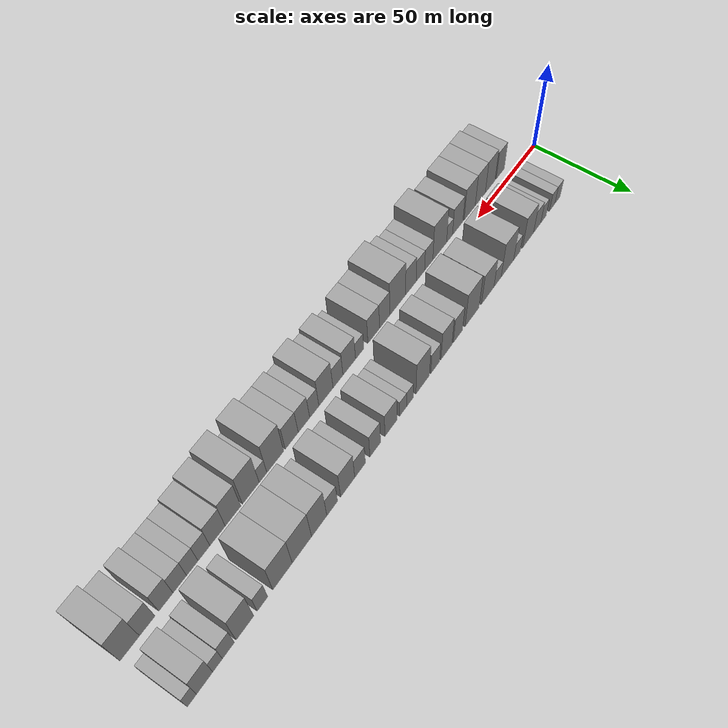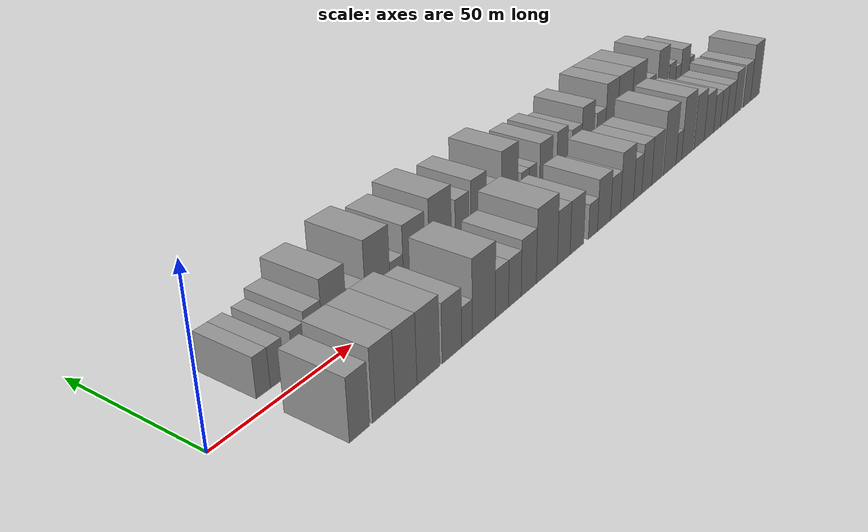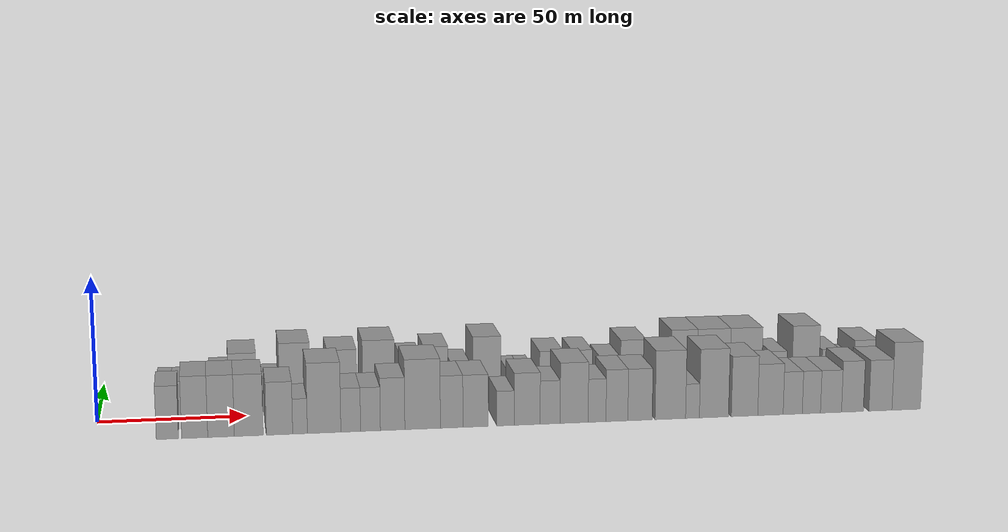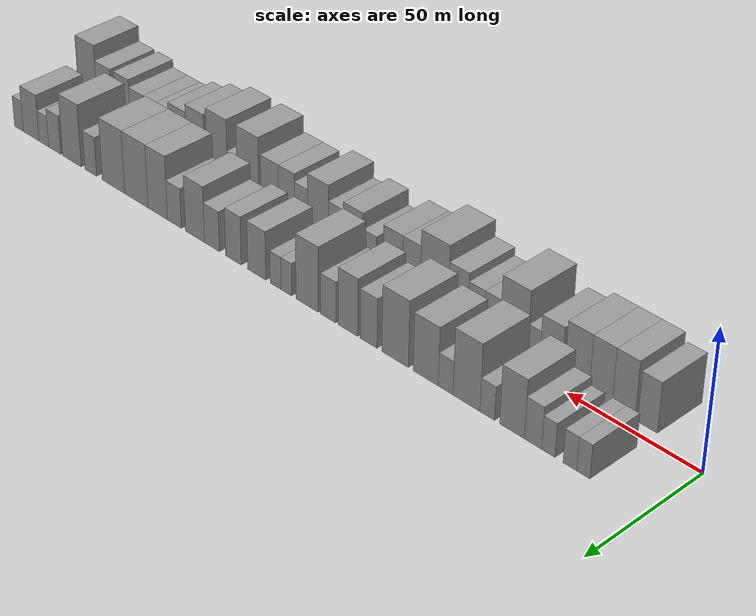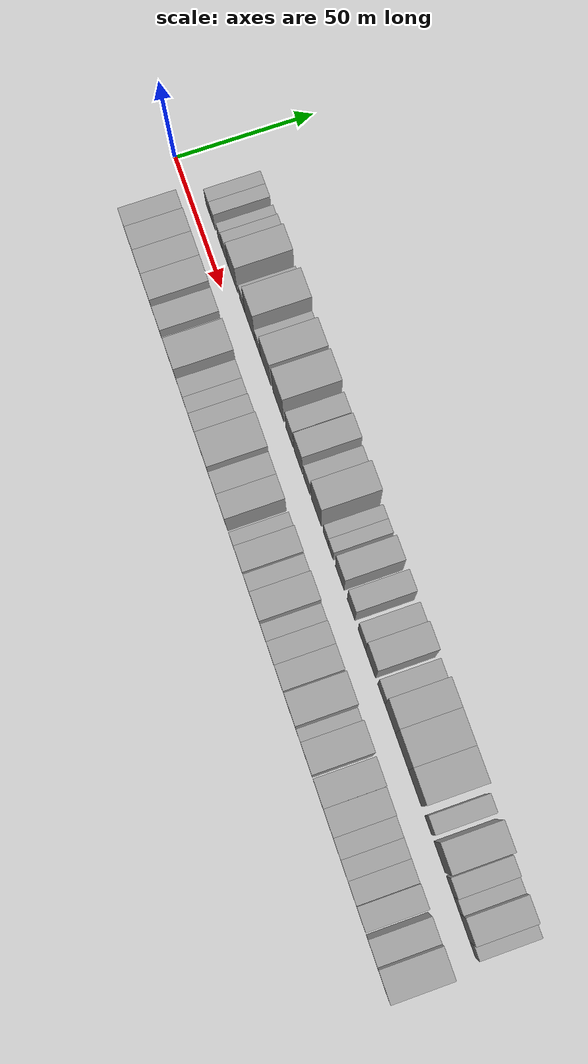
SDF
<sdf version="1.6">
 <world name="default">
  <scene>
   <sky><clouds><speed>12</speed></clouds></sky>
   <ambient>0.4 0.4 0.4 1</ambient>
   <background>0.7 0.7 0.7 1</background>
   <shadows>1</shadows>
  </scene>
  <gravity>0 0 -9.8066</gravity>
  <magnetic_field>6e-06 2.3e-05 -4.2e-05</magnetic_field>
  <physics default="0" name="default_physics" type="ode">
   <ode>
    <solver>
     <type>quick</type>
     <iters>10</iters>
     <sor>1.0</sor>
     <use_dynamic_moi_rescaling>0</use_dynamic_moi_rescaling>
    </solver>
    <constraints>
     <cfm>0</cfm>
     <erp>0.2</erp>
     <contact_max_correcting_vel>100</contact_max_correcting_vel>
     <contact_surface_layer>0.001</contact_surface_layer>
    </constraints>
   </ode>
   <max_step_size>0.004</max_step_size>
   <real_time_factor>1</real_time_factor>
   <real_time_update_rate>250</real_time_update_rate>
  </physics>
  <light name="sun" type="directional">
   <pose>0 0 10 0 0 0</pose>
   <diffuse>0.8 0.8 0.8 1</diffuse>
   <specular>0.2 0.2 0.2 1</specular>
   <attenuation>
    <range>1000</range>
    <constant>0.9</constant>
    <linear>0.01</linear>
    <quadratic>0.001</quadratic>
   </attenuation>
   <direction>-0.5 0.1 -0.9</direction>
  </light>
  <model name="building_1">
   <static>1</static>
   <pose>22.4282 14.5000 0 0.000000 0.000000 1.570796</pose>
   <link name="link">
    <pose>0 0 6.00 0 0 0</pose>
    <collision name="collision"><geometry><box><size>20.0000 4.8564 12.0000</size></box></geometry></collision>
    <visual name="visual">
     <cast_shadows>0</cast_shadows>
     <geometry><box><size>20.0000 4.8564 12.0000</size></box></geometry>
     <material>
      <script>
       <uri>model://grey_wall/materials/scripts</uri>
       <uri>model://grey_wall/materials/textures</uri>
       <name>vrc/grey_wall</name>
      </script>
     </material>
    </visual>
   </link>
  </model>
  <model name="building_2">
   <static>1</static>
   <pose>27.3534 14.5000 0 0.000000 0.000000 1.570796</pose>
   <link name="link">
    <pose>0 0 6.00 0 0 0</pose>
    <collision name="collision"><geometry><box><size>20.0000 4.9939 12.0000</size></box></geometry></collision>
    <visual name="visual">
     <cast_shadows>0</cast_shadows>
     <geometry><box><size>20.0000 4.9939 12.0000</size></box></geometry>
     <material>
      <script>
       <uri>model://grey_wall/materials/scripts</uri>
       <uri>model://grey_wall/materials/textures</uri>
       <name>vrc/grey_wall</name>
      </script>
     </material>
    </visual>
   </link>
  </model>
  <model name="building_3">
   <static>1</static>
   <pose>35.3037 14.5000 0 0.000000 0.000000 1.570796</pose>
   <link name="link">
    <pose>0 0 6.00 0 0 0</pose>
    <collision name="collision"><geometry><box><size>20.0000 4.9067 12.0000</size></box></geometry></collision>
    <visual name="visual">
     <cast_shadows>0</cast_shadows>
     <geometry><box><size>20.0000 4.9067 12.0000</size></box></geometry>
     <material>
      <script>
       <uri>model://grey_wall/materials/scripts</uri>
       <uri>model://grey_wall/materials/textures</uri>
       <name>vrc/grey_wall</name>
      </script>
     </material>
    </visual>
   </link>
  </model>
  <model name="building_4">
   <static>1</static>
   <pose>40.9934 14.5000 0 0.000000 0.000000 1.570796</pose>
   <link name="link">
    <pose>0 0 7.50 0 0 0</pose>
    <collision name="collision"><geometry><box><size>20.0000 6.4727 15.0000</size></box></geometry></collision>
    <visual name="visual">
     <cast_shadows>0</cast_shadows>
     <geometry><box><size>20.0000 6.4727 15.0000</size></box></geometry>
     <material>
      <script>
       <uri>model://grey_wall/materials/scripts</uri>
       <uri>model://grey_wall/materials/textures</uri>
       <name>vrc/grey_wall</name>
      </script>
     </material>
    </visual>
   </link>
  </model>
  <model name="building_5">
   <static>1</static>
   <pose>48.9893 14.5000 0 0.000000 0.000000 1.570796</pose>
   <link name="link">
    <pose>0 0 10.50 0 0 0</pose>
    <collision name="collision"><geometry><box><size>20.0000 9.5191 21.0000</size></box></geometry></collision>
    <visual name="visual">
     <cast_shadows>0</cast_shadows>
     <geometry><box><size>20.0000 9.5191 21.0000</size></box></geometry>
     <material>
      <script>
       <uri>model://grey_wall/materials/scripts</uri>
       <uri>model://grey_wall/materials/textures</uri>
       <name>vrc/grey_wall</name>
      </script>
     </material>
    </visual>
   </link>
  </model>
  <model name="building_6">
   <static>1</static>
   <pose>58.6187 14.5000 0 0.000000 0.000000 1.570796</pose>
   <link name="link">
    <pose>0 0 6.00 0 0 0</pose>
    <collision name="collision"><geometry><box><size>20.0000 5.7397 12.0000</size></box></geometry></collision>
    <visual name="visual">
     <cast_shadows>0</cast_shadows>
     <geometry><box><size>20.0000 5.7397 12.0000</size></box></geometry>
     <material>
      <script>
       <uri>model://grey_wall/materials/scripts</uri>
       <uri>model://grey_wall/materials/textures</uri>
       <name>vrc/grey_wall</name>
      </script>
     </material>
    </visual>
   </link>
  </model>
  <model name="building_7">
   <static>1</static>
   <pose>66.8030 14.5000 0 0.000000 0.000000 1.570796</pose>
   <link name="link">
    <pose>0 0 12.00 0 0 0</pose>
    <collision name="collision"><geometry><box><size>20.0000 10.6289 24.0000</size></box></geometry></collision>
    <visual name="visual">
     <cast_shadows>0</cast_shadows>
     <geometry><box><size>20.0000 10.6289 24.0000</size></box></geometry>
     <material>
      <script>
       <uri>model://grey_wall/materials/scripts</uri>
       <uri>model://grey_wall/materials/textures</uri>
       <name>vrc/grey_wall</name>
      </script>
     </material>
    </visual>
   </link>
  </model>
  <model name="building_8">
   <static>1</static>
   <pose>75.0691 14.5000 0 0.000000 0.000000 1.570796</pose>
   <link name="link">
    <pose>0 0 6.00 0 0 0</pose>
    <collision name="collision"><geometry><box><size>20.0000 5.9034 12.0000</size></box></geometry></collision>
    <visual name="visual">
     <cast_shadows>0</cast_shadows>
     <geometry><box><size>20.0000 5.9034 12.0000</size></box></geometry>
     <material>
      <script>
       <uri>model://grey_wall/materials/scripts</uri>
       <uri>model://grey_wall/materials/textures</uri>
       <name>vrc/grey_wall</name>
      </script>
     </material>
    </visual>
   </link>
  </model>
  <model name="building_9">
   <static>1</static>
   <pose>83.1107 14.5000 0 0.000000 0.000000 1.570796</pose>
   <link name="link">
    <pose>0 0 10.50 0 0 0</pose>
    <collision name="collision"><geometry><box><size>20.0000 10.1798 21.0000</size></box></geometry></collision>
    <visual name="visual">
     <cast_shadows>0</cast_shadows>
     <geometry><box><size>20.0000 10.1798 21.0000</size></box></geometry>
     <material>
      <script>
       <uri>model://grey_wall/materials/scripts</uri>
       <uri>model://grey_wall/materials/textures</uri>
       <name>vrc/grey_wall</name>
      </script>
     </material>
    </visual>
   </link>
  </model>
  <model name="building_10">
   <static>1</static>
   <pose>95.7444 14.5000 0 0.000000 0.000000 1.570796</pose>
   <link name="link">
    <pose>0 0 12.00 0 0 0</pose>
    <collision name="collision"><geometry><box><size>20.0000 11.0875 24.0000</size></box></geometry></collision>
    <visual name="visual">
     <cast_shadows>0</cast_shadows>
     <geometry><box><size>20.0000 11.0875 24.0000</size></box></geometry>
     <material>
      <script>
       <uri>model://grey_wall/materials/scripts</uri>
       <uri>model://grey_wall/materials/textures</uri>
       <name>vrc/grey_wall</name>
      </script>
     </material>
    </visual>
   </link>
  </model>
  <model name="building_11">
   <static>1</static>
   <pose>106.8928 14.5000 0 0.000000 0.000000 1.570796</pose>
   <link name="link">
    <pose>0 0 9.00 0 0 0</pose>
    <collision name="collision"><geometry><box><size>20.0000 7.2093 18.0000</size></box></geometry></collision>
    <visual name="visual">
     <cast_shadows>0</cast_shadows>
     <geometry><box><size>20.0000 7.2093 18.0000</size></box></geometry>
     <material>
      <script>
       <uri>model://grey_wall/materials/scripts</uri>
       <uri>model://grey_wall/materials/textures</uri>
       <name>vrc/grey_wall</name>
      </script>
     </material>
    </visual>
   </link>
  </model>
  <model name="building_12">
   <static>1</static>
   <pose>115.7403 14.5000 0 0.000000 0.000000 1.570796</pose>
   <link name="link">
    <pose>0 0 10.50 0 0 0</pose>
    <collision name="collision"><geometry><box><size>20.0000 8.4857 21.0000</size></box></geometry></collision>
    <visual name="visual">
     <cast_shadows>0</cast_shadows>
     <geometry><box><size>20.0000 8.4857 21.0000</size></box></geometry>
     <material>
      <script>
       <uri>model://grey_wall/materials/scripts</uri>
       <uri>model://grey_wall/materials/textures</uri>
       <name>vrc/grey_wall</name>
      </script>
     </material>
    </visual>
   </link>
  </model>
  <model name="building_13">
   <static>1</static>
   <pose>124.2846 14.5000 0 0.000000 0.000000 1.570796</pose>
   <link name="link">
    <pose>0 0 7.50 0 0 0</pose>
    <collision name="collision"><geometry><box><size>20.0000 6.6029 15.0000</size></box></geometry></collision>
    <visual name="visual">
     <cast_shadows>0</cast_shadows>
     <geometry><box><size>20.0000 6.6029 15.0000</size></box></geometry>
     <material>
      <script>
       <uri>model://grey_wall/materials/scripts</uri>
       <uri>model://grey_wall/materials/textures</uri>
       <name>vrc/grey_wall</name>
      </script>
     </material>
    </visual>
   </link>
  </model>
  <model name="building_14">
   <static>1</static>
   <pose>133.5496 14.5000 0 0.000000 0.000000 1.570796</pose>
   <link name="link">
    <pose>0 0 12.00 0 0 0</pose>
    <collision name="collision"><geometry><box><size>20.0000 9.9270 24.0000</size></box></geometry></collision>
    <visual name="visual">
     <cast_shadows>0</cast_shadows>
     <geometry><box><size>20.0000 9.9270 24.0000</size></box></geometry>
     <material>
      <script>
       <uri>model://grey_wall/materials/scripts</uri>
       <uri>model://grey_wall/materials/textures</uri>
       <name>vrc/grey_wall</name>
      </script>
     </material>
    </visual>
   </link>
  </model>
  <model name="building_15">
   <static>1</static>
   <pose>142.9341 14.5000 0 0.000000 0.000000 1.570796</pose>
   <link name="link">
    <pose>0 0 6.00 0 0 0</pose>
    <collision name="collision"><geometry><box><size>20.0000 4.8421 12.0000</size></box></geometry></collision>
    <visual name="visual">
     <cast_shadows>0</cast_shadows>
     <geometry><box><size>20.0000 4.8421 12.0000</size></box></geometry>
     <material>
      <script>
       <uri>model://grey_wall/materials/scripts</uri>
       <uri>model://grey_wall/materials/textures</uri>
       <name>vrc/grey_wall</name>
      </script>
     </material>
    </visual>
   </link>
  </model>
  <model name="building_16">
   <static>1</static>
   <pose>147.7746 14.5000 0 0.000000 0.000000 1.570796</pose>
   <link name="link">
    <pose>0 0 6.00 0 0 0</pose>
    <collision name="collision"><geometry><box><size>20.0000 4.8389 12.0000</size></box></geometry></collision>
    <visual name="visual">
     <cast_shadows>0</cast_shadows>
     <geometry><box><size>20.0000 4.8389 12.0000</size></box></geometry>
     <material>
      <script>
       <uri>model://grey_wall/materials/scripts</uri>
       <uri>model://grey_wall/materials/textures</uri>
       <name>vrc/grey_wall</name>
      </script>
     </material>
    </visual>
   </link>
  </model>
  <model name="building_17">
   <static>1</static>
   <pose>156.3841 14.5000 0 0.000000 0.000000 1.570796</pose>
   <link name="link">
    <pose>0 0 9.00 0 0 0</pose>
    <collision name="collision"><geometry><box><size>20.0000 8.3801 18.0000</size></box></geometry></collision>
    <visual name="visual">
     <cast_shadows>0</cast_shadows>
     <geometry><box><size>20.0000 8.3801 18.0000</size></box></geometry>
     <material>
      <script>
       <uri>model://grey_wall/materials/scripts</uri>
       <uri>model://grey_wall/materials/textures</uri>
       <name>vrc/grey_wall</name>
      </script>
     </material>
    </visual>
   </link>
  </model>
  <model name="building_18">
   <static>1</static>
   <pose>167.2308 14.5000 0 0.000000 0.000000 1.570796</pose>
   <link name="link">
    <pose>0 0 9.00 0 0 0</pose>
    <collision name="collision"><geometry><box><size>20.0000 7.3133 18.0000</size></box></geometry></collision>
    <visual name="visual">
     <cast_shadows>0</cast_shadows>
     <geometry><box><size>20.0000 7.3133 18.0000</size></box></geometry>
     <material>
      <script>
       <uri>model://grey_wall/materials/scripts</uri>
       <uri>model://grey_wall/materials/textures</uri>
       <name>vrc/grey_wall</name>
      </script>
     </material>
    </visual>
   </link>
  </model>
  <model name="building_19">
   <static>1</static>
   <pose>177.4684 14.5000 0 0.000000 0.000000 1.570796</pose>
   <link name="link">
    <pose>0 0 7.50 0 0 0</pose>
    <collision name="collision"><geometry><box><size>20.0000 7.1618 15.0000</size></box></geometry></collision>
    <visual name="visual">
     <cast_shadows>0</cast_shadows>
     <geometry><box><size>20.0000 7.1618 15.0000</size></box></geometry>
     <material>
      <script>
       <uri>model://grey_wall/materials/scripts</uri>
       <uri>model://grey_wall/materials/textures</uri>
       <name>vrc/grey_wall</name>
      </script>
     </material>
    </visual>
   </link>
  </model>
  <model name="building_20">
   <static>1</static>
   <pose>185.6647 14.5000 0 0.000000 0.000000 1.570796</pose>
   <link name="link">
    <pose>0 0 10.50 0 0 0</pose>
    <collision name="collision"><geometry><box><size>20.0000 9.2309 21.0000</size></box></geometry></collision>
    <visual name="visual">
     <cast_shadows>0</cast_shadows>
     <geometry><box><size>20.0000 9.2309 21.0000</size></box></geometry>
     <material>
      <script>
       <uri>model://grey_wall/materials/scripts</uri>
       <uri>model://grey_wall/materials/textures</uri>
       <name>vrc/grey_wall</name>
      </script>
     </material>
    </visual>
   </link>
  </model>
  <model name="building_21">
   <static>1</static>
   <pose>195.7234 14.5000 0 0.000000 0.000000 1.570796</pose>
   <link name="link">
    <pose>0 0 7.50 0 0 0</pose>
    <collision name="collision"><geometry><box><size>20.0000 6.8864 15.0000</size></box></geometry></collision>
    <visual name="visual">
     <cast_shadows>0</cast_shadows>
     <geometry><box><size>20.0000 6.8864 15.0000</size></box></geometry>
     <material>
      <script>
       <uri>model://grey_wall/materials/scripts</uri>
       <uri>model://grey_wall/materials/textures</uri>
       <name>vrc/grey_wall</name>
      </script>
     </material>
    </visual>
   </link>
  </model>
  <model name="building_22">
   <static>1</static>
   <pose>203.9804 14.5000 0 0.000000 0.000000 1.570796</pose>
   <link name="link">
    <pose>0 0 12.00 0 0 0</pose>
    <collision name="collision"><geometry><box><size>20.0000 9.6276 24.0000</size></box></geometry></collision>
    <visual name="visual">
     <cast_shadows>0</cast_shadows>
     <geometry><box><size>20.0000 9.6276 24.0000</size></box></geometry>
     <material>
      <script>
       <uri>model://grey_wall/materials/scripts</uri>
       <uri>model://grey_wall/materials/textures</uri>
       <name>vrc/grey_wall</name>
      </script>
     </material>
    </visual>
   </link>
  </model>
  <model name="building_23">
   <static>1</static>
   <pose>214.7245 14.5000 0 0.000000 0.000000 1.570796</pose>
   <link name="link">
    <pose>0 0 12.00 0 0 0</pose>
    <collision name="collision"><geometry><box><size>20.0000 11.8608 24.0000</size></box></geometry></collision>
    <visual name="visual">
     <cast_shadows>0</cast_shadows>
     <geometry><box><size>20.0000 11.8608 24.0000</size></box></geometry>
     <material>
      <script>
       <uri>model://grey_wall/materials/scripts</uri>
       <uri>model://grey_wall/materials/textures</uri>
       <name>vrc/grey_wall</name>
      </script>
     </material>
    </visual>
   </link>
  </model>
  <model name="building_24">
   <static>1</static>
   <pose>226.4590 14.5000 0 0.000000 0.000000 1.570796</pose>
   <link name="link">
    <pose>0 0 12.00 0 0 0</pose>
    <collision name="collision"><geometry><box><size>20.0000 11.6083 24.0000</size></box></geometry></collision>
    <visual name="visual">
     <cast_shadows>0</cast_shadows>
     <geometry><box><size>20.0000 11.6083 24.0000</size></box></geometry>
     <material>
      <script>
       <uri>model://grey_wall/materials/scripts</uri>
       <uri>model://grey_wall/materials/textures</uri>
       <name>vrc/grey_wall</name>
      </script>
     </material>
    </visual>
   </link>
  </model>
  <model name="building_25">
   <static>1</static>
   <pose>238.3125 14.5000 0 0.000000 0.000000 1.570796</pose>
   <link name="link">
    <pose>0 0 7.50 0 0 0</pose>
    <collision name="collision"><geometry><box><size>20.0000 6.0986 15.0000</size></box></geometry></collision>
    <visual name="visual">
     <cast_shadows>0</cast_shadows>
     <geometry><box><size>20.0000 6.0986 15.0000</size></box></geometry>
     <material>
      <script>
       <uri>model://grey_wall/materials/scripts</uri>
       <uri>model://grey_wall/materials/textures</uri>
       <name>vrc/grey_wall</name>
      </script>
     </material>
    </visual>
   </link>
  </model>
  <model name="building_26">
   <static>1</static>
   <pose>248.3412 14.5000 0 0.000000 0.000000 1.570796</pose>
   <link name="link">
    <pose>0 0 12.00 0 0 0</pose>
    <collision name="collision"><geometry><box><size>20.0000 9.9587 24.0000</size></box></geometry></collision>
    <visual name="visual">
     <cast_shadows>0</cast_shadows>
     <geometry><box><size>20.0000 9.9587 24.0000</size></box></geometry>
     <material>
      <script>
       <uri>model://grey_wall/materials/scripts</uri>
       <uri>model://grey_wall/materials/textures</uri>
       <name>vrc/grey_wall</name>
      </script>
     </material>
    </visual>
   </link>
  </model>
  <model name="building_27">
   <static>1</static>
   <pose>257.6245 14.5000 0 0.000000 0.000000 1.570796</pose>
   <link name="link">
    <pose>0 0 7.50 0 0 0</pose>
    <collision name="collision"><geometry><box><size>20.0000 6.6081 15.0000</size></box></geometry></collision>
    <visual name="visual">
     <cast_shadows>0</cast_shadows>
     <geometry><box><size>20.0000 6.6081 15.0000</size></box></geometry>
     <material>
      <script>
       <uri>model://grey_wall/materials/scripts</uri>
       <uri>model://grey_wall/materials/textures</uri>
       <name>vrc/grey_wall</name>
      </script>
     </material>
    </visual>
   </link>
  </model>
  <model name="building_28">
   <static>1</static>
   <pose>263.5533 14.5000 0 0.000000 0.000000 1.570796</pose>
   <link name="link">
    <pose>0 0 6.00 0 0 0</pose>
    <collision name="collision"><geometry><box><size>20.0000 5.2495 12.0000</size></box></geometry></collision>
    <visual name="visual">
     <cast_shadows>0</cast_shadows>
     <geometry><box><size>20.0000 5.2495 12.0000</size></box></geometry>
     <material>
      <script>
       <uri>model://grey_wall/materials/scripts</uri>
       <uri>model://grey_wall/materials/textures</uri>
       <name>vrc/grey_wall</name>
      </script>
     </material>
    </visual>
   </link>
  </model>
  <model name="building_29">
   <static>1</static>
   <pose>270.5398 14.5000 0 0.000000 0.000000 1.570796</pose>
   <link name="link">
    <pose>0 0 9.00 0 0 0</pose>
    <collision name="collision"><geometry><box><size>20.0000 8.7234 18.0000</size></box></geometry></collision>
    <visual name="visual">
     <cast_shadows>0</cast_shadows>
     <geometry><box><size>20.0000 8.7234 18.0000</size></box></geometry>
     <material>
      <script>
       <uri>model://grey_wall/materials/scripts</uri>
       <uri>model://grey_wall/materials/textures</uri>
       <name>vrc/grey_wall</name>
      </script>
     </material>
    </visual>
   </link>
  </model>
  <model name="building_30">
   <static>1</static>
   <pose>277.3410 14.5000 0 0.000000 0.000000 1.570796</pose>
   <link name="link">
    <pose>0 0 6.00 0 0 0</pose>
    <collision name="collision"><geometry><box><size>20.0000 4.8791 12.0000</size></box></geometry></collision>
    <visual name="visual">
     <cast_shadows>0</cast_shadows>
     <geometry><box><size>20.0000 4.8791 12.0000</size></box></geometry>
     <material>
      <script>
       <uri>model://grey_wall/materials/scripts</uri>
       <uri>model://grey_wall/materials/textures</uri>
       <name>vrc/grey_wall</name>
      </script>
     </material>
    </visual>
   </link>
  </model>
  <model name="building_31">
   <static>1</static>
   <pose>23.6114 -14.5000 0 0.000000 0.000000 1.570796</pose>
   <link name="link">
    <pose>0 0 9.00 0 0 0</pose>
    <collision name="collision"><geometry><box><size>20.0000 7.2228 18.0000</size></box></geometry></collision>
    <visual name="visual">
     <cast_shadows>0</cast_shadows>
     <geometry><box><size>20.0000 7.2228 18.0000</size></box></geometry>
     <material>
      <script>
       <uri>model://grey_wall/materials/scripts</uri>
       <uri>model://grey_wall/materials/textures</uri>
       <name>vrc/grey_wall</name>
      </script>
     </material>
    </visual>
   </link>
  </model>
  <model name="building_32">
   <static>1</static>
   <pose>32.4820 -14.5000 0 0.000000 0.000000 1.570796</pose>
   <link name="link">
    <pose>0 0 10.50 0 0 0</pose>
    <collision name="collision"><geometry><box><size>20.0000 8.5184 21.0000</size></box></geometry></collision>
    <visual name="visual">
     <cast_shadows>0</cast_shadows>
     <geometry><box><size>20.0000 8.5184 21.0000</size></box></geometry>
     <material>
      <script>
       <uri>model://grey_wall/materials/scripts</uri>
       <uri>model://grey_wall/materials/textures</uri>
       <name>vrc/grey_wall</name>
      </script>
     </material>
    </visual>
   </link>
  </model>
  <model name="building_33">
   <static>1</static>
   <pose>41.0888 -14.5000 0 0.000000 0.000000 1.570796</pose>
   <link name="link">
    <pose>0 0 10.50 0 0 0</pose>
    <collision name="collision"><geometry><box><size>20.0000 8.6951 21.0000</size></box></geometry></collision>
    <visual name="visual">
     <cast_shadows>0</cast_shadows>
     <geometry><box><size>20.0000 8.6951 21.0000</size></box></geometry>
     <material>
      <script>
       <uri>model://grey_wall/materials/scripts</uri>
       <uri>model://grey_wall/materials/textures</uri>
       <name>vrc/grey_wall</name>
      </script>
     </material>
    </visual>
   </link>
  </model>
  <model name="building_34">
   <static>1</static>
   <pose>50.1770 -14.5000 0 0.000000 0.000000 1.570796</pose>
   <link name="link">
    <pose>0 0 10.50 0 0 0</pose>
    <collision name="collision"><geometry><box><size>20.0000 9.4814 21.0000</size></box></geometry></collision>
    <visual name="visual">
     <cast_shadows>0</cast_shadows>
     <geometry><box><size>20.0000 9.4814 21.0000</size></box></geometry>
     <material>
      <script>
       <uri>model://grey_wall/materials/scripts</uri>
       <uri>model://grey_wall/materials/textures</uri>
       <name>vrc/grey_wall</name>
      </script>
     </material>
    </visual>
   </link>
  </model>
  <model name="building_35">
   <static>1</static>
   <pose>60.2564 -14.5000 0 0.000000 0.000000 1.570796</pose>
   <link name="link">
    <pose>0 0 9.00 0 0 0</pose>
    <collision name="collision"><geometry><box><size>20.0000 8.6774 18.0000</size></box></geometry></collision>
    <visual name="visual">
     <cast_shadows>0</cast_shadows>
     <geometry><box><size>20.0000 8.6774 18.0000</size></box></geometry>
     <material>
      <script>
       <uri>model://grey_wall/materials/scripts</uri>
       <uri>model://grey_wall/materials/textures</uri>
       <name>vrc/grey_wall</name>
      </script>
     </material>
    </visual>
   </link>
  </model>
  <model name="building_36">
   <static>1</static>
   <pose>67.0243 -14.5000 0 0.000000 0.000000 1.570796</pose>
   <link name="link">
    <pose>0 0 6.00 0 0 0</pose>
    <collision name="collision"><geometry><box><size>20.0000 4.8584 12.0000</size></box></geometry></collision>
    <visual name="visual">
     <cast_shadows>0</cast_shadows>
     <geometry><box><size>20.0000 4.8584 12.0000</size></box></geometry>
     <material>
      <script>
       <uri>model://grey_wall/materials/scripts</uri>
       <uri>model://grey_wall/materials/textures</uri>
       <name>vrc/grey_wall</name>
      </script>
     </material>
    </visual>
   </link>
  </model>
  <model name="building_37">
   <static>1</static>
   <pose>75.0050 -14.5000 0 0.000000 0.000000 1.570796</pose>
   <link name="link">
    <pose>0 0 12.00 0 0 0</pose>
    <collision name="collision"><geometry><box><size>20.0000 11.1028 24.0000</size></box></geometry></collision>
    <visual name="visual">
     <cast_shadows>0</cast_shadows>
     <geometry><box><size>20.0000 11.1028 24.0000</size></box></geometry>
     <material>
      <script>
       <uri>model://grey_wall/materials/scripts</uri>
       <uri>model://grey_wall/materials/textures</uri>
       <name>vrc/grey_wall</name>
      </script>
     </material>
    </visual>
   </link>
  </model>
  <model name="building_38">
   <static>1</static>
   <pose>83.8336 -14.5000 0 0.000000 0.000000 1.570796</pose>
   <link name="link">
    <pose>0 0 7.50 0 0 0</pose>
    <collision name="collision"><geometry><box><size>20.0000 6.5544 15.0000</size></box></geometry></collision>
    <visual name="visual">
     <cast_shadows>0</cast_shadows>
     <geometry><box><size>20.0000 6.5544 15.0000</size></box></geometry>
     <material>
      <script>
       <uri>model://grey_wall/materials/scripts</uri>
       <uri>model://grey_wall/materials/textures</uri>
       <name>vrc/grey_wall</name>
      </script>
     </material>
    </visual>
   </link>
  </model>
  <model name="building_39">
   <static>1</static>
   <pose>90.4087 -14.5000 0 0.000000 0.000000 1.570796</pose>
   <link name="link">
    <pose>0 0 7.50 0 0 0</pose>
    <collision name="collision"><geometry><box><size>20.0000 6.5958 15.0000</size></box></geometry></collision>
    <visual name="visual">
     <cast_shadows>0</cast_shadows>
     <geometry><box><size>20.0000 6.5958 15.0000</size></box></geometry>
     <material>
      <script>
       <uri>model://grey_wall/materials/scripts</uri>
       <uri>model://grey_wall/materials/textures</uri>
       <name>vrc/grey_wall</name>
      </script>
     </material>
    </visual>
   </link>
  </model>
  <model name="building_40">
   <static>1</static>
   <pose>97.8006 -14.5000 0 0.000000 0.000000 1.570796</pose>
   <link name="link">
    <pose>0 0 9.00 0 0 0</pose>
    <collision name="collision"><geometry><box><size>20.0000 8.1879 18.0000</size></box></geometry></collision>
    <visual name="visual">
     <cast_shadows>0</cast_shadows>
     <geometry><box><size>20.0000 8.1879 18.0000</size></box></geometry>
     <material>
      <script>
       <uri>model://grey_wall/materials/scripts</uri>
       <uri>model://grey_wall/materials/textures</uri>
       <name>vrc/grey_wall</name>
      </script>
     </material>
    </visual>
   </link>
  </model>
  <model name="building_41">
   <static>1</static>
   <pose>107.8607 -14.5000 0 0.000000 0.000000 1.570796</pose>
   <link name="link">
    <pose>0 0 12.00 0 0 0</pose>
    <collision name="collision"><geometry><box><size>20.0000 11.9323 24.0000</size></box></geometry></collision>
    <visual name="visual">
     <cast_shadows>0</cast_shadows>
     <geometry><box><size>20.0000 11.9323 24.0000</size></box></geometry>
     <material>
      <script>
       <uri>model://grey_wall/materials/scripts</uri>
       <uri>model://grey_wall/materials/textures</uri>
       <name>vrc/grey_wall</name>
      </script>
     </material>
    </visual>
   </link>
  </model>
  <model name="building_42">
   <static>1</static>
   <pose>117.6326 -14.5000 0 0.000000 0.000000 1.570796</pose>
   <link name="link">
    <pose>0 0 9.00 0 0 0</pose>
    <collision name="collision"><geometry><box><size>20.0000 7.6115 18.0000</size></box></geometry></collision>
    <visual name="visual">
     <cast_shadows>0</cast_shadows>
     <geometry><box><size>20.0000 7.6115 18.0000</size></box></geometry>
     <material>
      <script>
       <uri>model://grey_wall/materials/scripts</uri>
       <uri>model://grey_wall/materials/textures</uri>
       <name>vrc/grey_wall</name>
      </script>
     </material>
    </visual>
   </link>
  </model>
  <model name="building_43">
   <static>1</static>
   <pose>125.6865 -14.5000 0 0.000000 0.000000 1.570796</pose>
   <link name="link">
    <pose>0 0 9.00 0 0 0</pose>
    <collision name="collision"><geometry><box><size>20.0000 8.4962 18.0000</size></box></geometry></collision>
    <visual name="visual">
     <cast_shadows>0</cast_shadows>
     <geometry><box><size>20.0000 8.4962 18.0000</size></box></geometry>
     <material>
      <script>
       <uri>model://grey_wall/materials/scripts</uri>
       <uri>model://grey_wall/materials/textures</uri>
       <name>vrc/grey_wall</name>
      </script>
     </material>
    </visual>
   </link>
  </model>
  <model name="building_44">
   <static>1</static>
   <pose>135.8698 -14.5000 0 0.000000 0.000000 1.570796</pose>
   <link name="link">
    <pose>0 0 6.00 0 0 0</pose>
    <collision name="collision"><geometry><box><size>20.0000 5.8704 12.0000</size></box></geometry></collision>
    <visual name="visual">
     <cast_shadows>0</cast_shadows>
     <geometry><box><size>20.0000 5.8704 12.0000</size></box></geometry>
     <material>
      <script>
       <uri>model://grey_wall/materials/scripts</uri>
       <uri>model://grey_wall/materials/textures</uri>
       <name>vrc/grey_wall</name>
      </script>
     </material>
    </visual>
   </link>
  </model>
  <model name="building_45">
   <static>1</static>
   <pose>143.2275 -14.5000 0 0.000000 0.000000 1.570796</pose>
   <link name="link">
    <pose>0 0 9.00 0 0 0</pose>
    <collision name="collision"><geometry><box><size>20.0000 8.8450 18.0000</size></box></geometry></collision>
    <visual name="visual">
     <cast_shadows>0</cast_shadows>
     <geometry><box><size>20.0000 8.8450 18.0000</size></box></geometry>
     <material>
      <script>
       <uri>model://grey_wall/materials/scripts</uri>
       <uri>model://grey_wall/materials/textures</uri>
       <name>vrc/grey_wall</name>
      </script>
     </material>
    </visual>
   </link>
  </model>
  <model name="building_46">
   <static>1</static>
   <pose>151.0718 -14.5000 0 0.000000 0.000000 1.570796</pose>
   <link name="link">
    <pose>0 0 7.50 0 0 0</pose>
    <collision name="collision"><geometry><box><size>20.0000 6.8437 15.0000</size></box></geometry></collision>
    <visual name="visual">
     <cast_shadows>0</cast_shadows>
     <geometry><box><size>20.0000 6.8437 15.0000</size></box></geometry>
     <material>
      <script>
       <uri>model://grey_wall/materials/scripts</uri>
       <uri>model://grey_wall/materials/textures</uri>
       <name>vrc/grey_wall</name>
      </script>
     </material>
    </visual>
   </link>
  </model>
  <model name="building_47">
   <static>1</static>
   <pose>159.2963 -14.5000 0 0.000000 0.000000 1.570796</pose>
   <link name="link">
    <pose>0 0 10.50 0 0 0</pose>
    <collision name="collision"><geometry><box><size>20.0000 9.6053 21.0000</size></box></geometry></collision>
    <visual name="visual">
     <cast_shadows>0</cast_shadows>
     <geometry><box><size>20.0000 9.6053 21.0000</size></box></geometry>
     <material>
      <script>
       <uri>model://grey_wall/materials/scripts</uri>
       <uri>model://grey_wall/materials/textures</uri>
       <name>vrc/grey_wall</name>
      </script>
     </material>
    </visual>
   </link>
  </model>
  <model name="building_48">
   <static>1</static>
   <pose>167.1680 -14.5000 0 0.000000 0.000000 1.570796</pose>
   <link name="link">
    <pose>0 0 7.50 0 0 0</pose>
    <collision name="collision"><geometry><box><size>20.0000 6.1380 15.0000</size></box></geometry></collision>
    <visual name="visual">
     <cast_shadows>0</cast_shadows>
     <geometry><box><size>20.0000 6.1380 15.0000</size></box></geometry>
     <material>
      <script>
       <uri>model://grey_wall/materials/scripts</uri>
       <uri>model://grey_wall/materials/textures</uri>
       <name>vrc/grey_wall</name>
      </script>
     </material>
    </visual>
   </link>
  </model>
  <model name="building_49">
   <static>1</static>
   <pose>174.0187 -14.5000 0 0.000000 0.000000 1.570796</pose>
   <link name="link">
    <pose>0 0 9.00 0 0 0</pose>
    <collision name="collision"><geometry><box><size>20.0000 7.5634 18.0000</size></box></geometry></collision>
    <visual name="visual">
     <cast_shadows>0</cast_shadows>
     <geometry><box><size>20.0000 7.5634 18.0000</size></box></geometry>
     <material>
      <script>
       <uri>model://grey_wall/materials/scripts</uri>
       <uri>model://grey_wall/materials/textures</uri>
       <name>vrc/grey_wall</name>
      </script>
     </material>
    </visual>
   </link>
  </model>
  <model name="building_50">
   <static>1</static>
   <pose>182.0059 -14.5000 0 0.000000 0.000000 1.570796</pose>
   <link name="link">
    <pose>0 0 9.00 0 0 0</pose>
    <collision name="collision"><geometry><box><size>20.0000 8.4109 18.0000</size></box></geometry></collision>
    <visual name="visual">
     <cast_shadows>0</cast_shadows>
     <geometry><box><size>20.0000 8.4109 18.0000</size></box></geometry>
     <material>
      <script>
       <uri>model://grey_wall/materials/scripts</uri>
       <uri>model://grey_wall/materials/textures</uri>
       <name>vrc/grey_wall</name>
      </script>
     </material>
    </visual>
   </link>
  </model>
  <model name="building_51">
   <static>1</static>
   <pose>192.5098 -14.5000 0 0.000000 0.000000 1.570796</pose>
   <link name="link">
    <pose>0 0 12.00 0 0 0</pose>
    <collision name="collision"><geometry><box><size>20.0000 10.5970 24.0000</size></box></geometry></collision>
    <visual name="visual">
     <cast_shadows>0</cast_shadows>
     <geometry><box><size>20.0000 10.5970 24.0000</size></box></geometry>
     <material>
      <script>
       <uri>model://grey_wall/materials/scripts</uri>
       <uri>model://grey_wall/materials/textures</uri>
       <name>vrc/grey_wall</name>
      </script>
     </material>
    </visual>
   </link>
  </model>
  <model name="building_52">
   <static>1</static>
   <pose>200.2227 -14.5000 0 0.000000 0.000000 1.570796</pose>
   <link name="link">
    <pose>0 0 6.00 0 0 0</pose>
    <collision name="collision"><geometry><box><size>20.0000 4.8288 12.0000</size></box></geometry></collision>
    <visual name="visual">
     <cast_shadows>0</cast_shadows>
     <geometry><box><size>20.0000 4.8288 12.0000</size></box></geometry>
     <material>
      <script>
       <uri>model://grey_wall/materials/scripts</uri>
       <uri>model://grey_wall/materials/textures</uri>
       <name>vrc/grey_wall</name>
      </script>
     </material>
    </visual>
   </link>
  </model>
  <model name="building_53">
   <static>1</static>
   <pose>207.7254 -14.5000 0 0.000000 0.000000 1.570796</pose>
   <link name="link">
    <pose>0 0 12.00 0 0 0</pose>
    <collision name="collision"><geometry><box><size>20.0000 10.1766 24.0000</size></box></geometry></collision>
    <visual name="visual">
     <cast_shadows>0</cast_shadows>
     <geometry><box><size>20.0000 10.1766 24.0000</size></box></geometry>
     <material>
      <script>
       <uri>model://grey_wall/materials/scripts</uri>
       <uri>model://grey_wall/materials/textures</uri>
       <name>vrc/grey_wall</name>
      </script>
     </material>
    </visual>
   </link>
  </model>
  <model name="building_54">
   <static>1</static>
   <pose>218.4557 -14.5000 0 0.000000 0.000000 1.570796</pose>
   <link name="link">
    <pose>0 0 10.50 0 0 0</pose>
    <collision name="collision"><geometry><box><size>20.0000 9.2840 21.0000</size></box></geometry></collision>
    <visual name="visual">
     <cast_shadows>0</cast_shadows>
     <geometry><box><size>20.0000 9.2840 21.0000</size></box></geometry>
     <material>
      <script>
       <uri>model://grey_wall/materials/scripts</uri>
       <uri>model://grey_wall/materials/textures</uri>
       <name>vrc/grey_wall</name>
      </script>
     </material>
    </visual>
   </link>
  </model>
  <model name="building_55">
   <static>1</static>
   <pose>227.5716 -14.5000 0 0.000000 0.000000 1.570796</pose>
   <link name="link">
    <pose>0 0 9.00 0 0 0</pose>
    <collision name="collision"><geometry><box><size>20.0000 8.9478 18.0000</size></box></geometry></collision>
    <visual name="visual">
     <cast_shadows>0</cast_shadows>
     <geometry><box><size>20.0000 8.9478 18.0000</size></box></geometry>
     <material>
      <script>
       <uri>model://grey_wall/materials/scripts</uri>
       <uri>model://grey_wall/materials/textures</uri>
       <name>vrc/grey_wall</name>
      </script>
     </material>
    </visual>
   </link>
  </model>
  <model name="building_56">
   <static>1</static>
   <pose>235.4330 -14.5000 0 0.000000 0.000000 1.570796</pose>
   <link name="link">
    <pose>0 0 7.50 0 0 0</pose>
    <collision name="collision"><geometry><box><size>20.0000 6.7750 15.0000</size></box></geometry></collision>
    <visual name="visual">
     <cast_shadows>0</cast_shadows>
     <geometry><box><size>20.0000 6.7750 15.0000</size></box></geometry>
     <material>
      <script>
       <uri>model://grey_wall/materials/scripts</uri>
       <uri>model://grey_wall/materials/textures</uri>
       <name>vrc/grey_wall</name>
      </script>
     </material>
    </visual>
   </link>
  </model>
  <model name="building_57">
   <static>1</static>
   <pose>242.0465 -14.5000 0 0.000000 0.000000 1.570796</pose>
   <link name="link">
    <pose>0 0 7.50 0 0 0</pose>
    <collision name="collision"><geometry><box><size>20.0000 6.4520 15.0000</size></box></geometry></collision>
    <visual name="visual">
     <cast_shadows>0</cast_shadows>
     <geometry><box><size>20.0000 6.4520 15.0000</size></box></geometry>
     <material>
      <script>
       <uri>model://grey_wall/materials/scripts</uri>
       <uri>model://grey_wall/materials/textures</uri>
       <name>vrc/grey_wall</name>
      </script>
     </material>
    </visual>
   </link>
  </model>
  <model name="building_58">
   <static>1</static>
   <pose>249.0186 -14.5000 0 0.000000 0.000000 1.570796</pose>
   <link name="link">
    <pose>0 0 7.50 0 0 0</pose>
    <collision name="collision"><geometry><box><size>20.0000 7.4922 15.0000</size></box></geometry></collision>
    <visual name="visual">
     <cast_shadows>0</cast_shadows>
     <geometry><box><size>20.0000 7.4922 15.0000</size></box></geometry>
     <material>
      <script>
       <uri>model://grey_wall/materials/scripts</uri>
       <uri>model://grey_wall/materials/textures</uri>
       <name>vrc/grey_wall</name>
      </script>
     </material>
    </visual>
   </link>
  </model>
  <model name="building_59">
   <static>1</static>
   <pose>256.6563 -14.5000 0 0.000000 0.000000 1.570796</pose>
   <link name="link">
    <pose>0 0 9.00 0 0 0</pose>
    <collision name="collision"><geometry><box><size>20.0000 7.7832 18.0000</size></box></geometry></collision>
    <visual name="visual">
     <cast_shadows>0</cast_shadows>
     <geometry><box><size>20.0000 7.7832 18.0000</size></box></geometry>
     <material>
      <script>
       <uri>model://grey_wall/materials/scripts</uri>
       <uri>model://grey_wall/materials/textures</uri>
       <name>vrc/grey_wall</name>
      </script>
     </material>
    </visual>
   </link>
  </model>
  <model name="building_60">
   <static>1</static>
   <pose>266.6721 -14.5000 0 0.000000 0.000000 1.570796</pose>
   <link name="link">
    <pose>0 0 9.00 0 0 0</pose>
    <collision name="collision"><geometry><box><size>20.0000 8.2484 18.0000</size></box></geometry></collision>
    <visual name="visual">
     <cast_shadows>0</cast_shadows>
     <geometry><box><size>20.0000 8.2484 18.0000</size></box></geometry>
     <material>
      <script>
       <uri>model://grey_wall/materials/scripts</uri>
       <uri>model://grey_wall/materials/textures</uri>
       <name>vrc/grey_wall</name>
      </script>
     </material>
    </visual>
   </link>
  </model>
  <model name="building_61">
   <static>1</static>
   <pose>275.8996 -14.5000 0 0.000000 0.000000 1.570796</pose>
   <link name="link">
    <pose>0 0 12.00 0 0 0</pose>
    <collision name="collision"><geometry><box><size>20.0000 10.2065 24.0000</size></box></geometry></collision>
    <visual name="visual">
     <cast_shadows>0</cast_shadows>
     <geometry><box><size>20.0000 10.2065 24.0000</size></box></geometry>
     <material>
      <script>
       <uri>model://grey_wall/materials/scripts</uri>
       <uri>model://grey_wall/materials/textures</uri>
       <name>vrc/grey_wall</name>
      </script>
     </material>
    </visual>
   </link>
  </model>
 </world>
</sdf>
